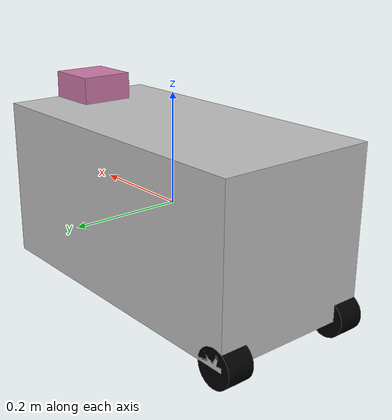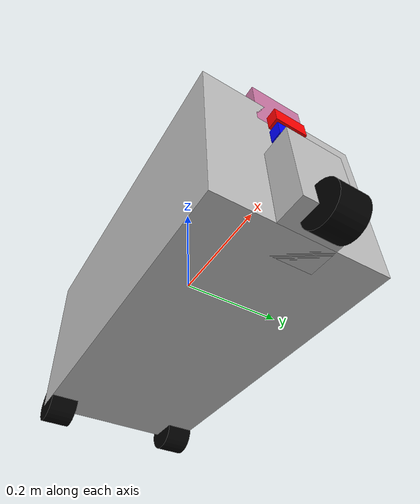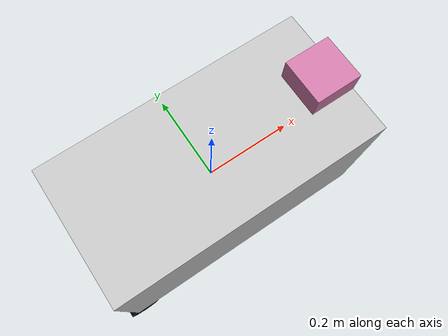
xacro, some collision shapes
<?xml version="1.0"?>
<robot xmlns:xacro="http://ros.org/wiki/xacro" name="tortoisebot">

   <link name="base_link">
   <visual>
      <geometry>
         <box size="0.6 0.3 0.3"/>
      </geometry>
      <material name="silver">
         <color rgba="0.75 0.75 0.75 1"/>
      </material>
   </visual>
   <collision>
      <geometry>
         <box size="0.6 0.3 0.3"/>
      </geometry>
   </collision>
   <inertial>
      <mass value="1.0"/>
      <inertia ixx="0.015" iyy="0.0375" izz="0.0375" ixy="0" ixz="0" iyz="0"/>
   </inertial>
   </link>

   <joint name="base_footprint_joint" type="fixed">
      <parent link="base_link"/>
      <child link="base_footprint"/>
      <origin xyz="0 0 -0.185" rpy="0 0 0"/>
   </joint>

   <link name = "base_footprint"/>

   <link name="front_caster">
   <visual>
      <geometry>
         <box size="0.1 0.1 0.15"/>
      </geometry>
      <material name="silver">
         <color rgba="0.75 0.75 0.75 1"/>
      </material>
   </visual>
   <collision>
      <geometry>
         <box size="0.1 0.1 0.15"/>
      </geometry>
   </collision>
   <inertial>
      <mass value="0.05"/>
      <inertia ixx="0.00013542" iyy="0.00013542" izz="0.00008333" ixy="0" ixz="0" iyz="0"/>
   </inertial>
   </link>

   <joint name="front_caster_joint" type="continuous">
      <axis xyz="0 0 1"/>
      <parent link="base_link"/>
      <child link="front_caster"/>
      <origin rpy="0 0 0" xyz="0.3 0 -0.075"/>
   </joint>

   <link name="front_wheel">
   <visual>
      <geometry>
         <cylinder length="0.05" radius="0.035"/>
      </geometry>
      <material name="black">
         <color rgba="0 0 0 1"/>
      </material>
   </visual>
   <collision>
      <geometry>
         <cylinder length="0.05" radius="0.035"/>
      </geometry>
   </collision>
   <inertial>
      <mass value="0.1"/>
      <inertia ixx="5.1458e-5" iyy="5.1458e-5" izz="6.125e-5" ixy="0" ixz="0" iyz="0"/>
   </inertial>
   </link>

   <joint name="front_wheel_joint" type="continuous">
      <axis xyz="0 0 1"/>
      <parent link="front_caster"/>
      <child link="front_wheel"/>
      <origin rpy="-1.5708 0 0" xyz="0.05 0 -.075"/>
   </joint>

   <link name="right_wheel">
   <visual>
      <geometry>
         <cylinder length="0.05" radius="0.035"/>
      </geometry>
      <material name="black">
         <color rgba="0 0 0 1"/>
      </material>
   </visual>
   <collision>
      <geometry>
         <cylinder length="0.05" radius="0.035"/>
      </geometry>
   </collision>
   <inertial>
      <mass value="0.1"/>
      <inertia ixx="5.1458e-5" iyy="5.1458e-5" izz="6.125e-5" ixy="0" ixz="0" iyz="0"/>
   </inertial>
   </link>

   <joint name="right_wheel_joint" type="continuous">
      <axis xyz="0 0 1">
         <limit>
            <effort>20</effort>
         </limit>
      </axis>
      <max_linear_acceleration>0.033</max_linear_acceleration>
      <parent link="base_link"/>
      <child link="right_wheel"/>
      <origin rpy="-1.5708 0 0" xyz="-0.2825 -0.125 -.15"/>
   </joint>

   <link name="left_wheel">
   <visual>
      <geometry>
         <cylinder length="0.05" radius="0.035"/>
      </geometry>
      <material name="black">
         <color rgba="0 0 0 1"/>
      </material>
   </visual>
   <collision>
      <geometry>
         <cylinder length="0.05" radius="0.035"/>
      </geometry>
   </collision>
   <inertial>
      <mass value="0.1"/>
      <inertia ixx="5.1458e-5" iyy="5.1458e-5" izz="6.125e-5" ixy="0" ixz="0" iyz="0"/>
   </inertial>
   </link>

   <joint name="left_wheel_joint" type="continuous">
      <axis xyz="0 0 1">
         <limit>
            <effort>20</effort>
         </limit>
      </axis>
      <max_linear_acceleration>0.033</max_linear_acceleration>
      <parent link="base_link"/>
      <child link="left_wheel"/>
      <origin rpy="-1.5708 0 0" xyz="-0.2825 0.125 -.15"/>
   </joint>

   <joint name="lidar_joint" type="fixed">
      <parent link="base_link"/>
      <child link="base_scan"/>
      <origin xyz="0.25 0 0.15" rpy="0 0 0"/>
   </joint>

   <link name="base_scan">
   <visual>
      <origin xyz="0 0 0" rpy="0 0 0"/>
      <geometry>
         <mesh filename="file://$(find robot_description)/meshes/lidar.dae"/>
      </geometry>
   </visual>
   <collision>
      <origin xyz="0 0 0" rpy="0 0 0"/>
      <geometry>
         <box size="0.1 0.1 0.1"/>
      </geometry>
   </collision>
   <inertial>
      <mass value="1e-5"/>
      <origin xyz="0 0 0" rpy="0 0 0"/>
      <inertia ixx="1e-6" ixy="0" ixz="0" iyy="1e-6" iyz="0" izz="1e-6"/>
   </inertial>

   </link>

   <link name="camera_link">
   <visual>
      <geometry>
         <box size="0.02 0.06 0.03"/>
      </geometry>
      <material name="blue">
         <color rgba="0 0 1 1"/>
      </material>
   </visual>
   <collision>
      <geometry>
         <box size="0.02 0.06 0.03"/>
      </geometry>
   </collision>
   <inertial>
      <mass value="0.05"/>
      <inertia ixx="1e-5" iyy="1e-5" izz="1e-5" ixy="0" ixz="0" iyz="0"/>
   </inertial>

   </link>

   <joint name="camera_joint" type="fixed">
      <parent link="base_link"/>
      <child link="camera_link"/>
      <origin xyz="0.31 0.0 0.06" rpy="0 0 0"/>
   </joint>

   <link name="camera_optical_frame"/>
   <joint name="camera_optical_frame_joint" type="fixed">
      <parent link="camera_link"/>
      <child link="camera_optical_frame"/>
      <origin xyz="0 0 0" rpy="-1.5708 0 -1.5708"/>
   </joint>

   <link name ="imu_link">
   <visual>
      <geometry>
         <box size="0.02 0.06 0.03"/>
      </geometry>
      <material name="red">
         <color rgba="1 0 0 1"/>
      </material>
   </visual>
   <collision>
      <geometry>
         <box size="0.02 0.06 0.03"/>
      </geometry>
   </collision>
   <inertial>
      <mass value="0.05"/>
      <inertia ixx="1e-5" iyy="1e-5" izz="1e-5" ixy="0" ixz="0" iyz="0"/>
   </inertial>

   </link>

    <joint name="imu_joint" type="fixed">
      <parent link="base_link"/>
      <child link="imu_link"/>
      <origin xyz="0.31 0.0 0.1" rpy="0 0 0"/>
   </joint>

  <gazebo>
      <plugin
         filename="gz-sim-diff-drive-system"
         name="gz::sim::systems::DiffDrive">
         <left_joint>left_wheel_joint</left_joint>
         <right_joint>right_wheel_joint</right_joint>
         <wheel_separation>0.25</wheel_separation>
         <wheel_radius>0.035</wheel_radius>
         <topic>cmd_vel</topic>
         <max_linear_acceleration>0.1</max_linear_acceleration>
         <odom_topic>odom</odom_topic>
         <frame_id>odom</frame_id>
         <child_frame_id>base_link</child_frame_id>
         <odom_publisher_frequency>30</odom_publisher_frequency>
         <tf_topic>/tf</tf_topic>
      </plugin>

      <plugin filename="gz-sim-joint-state-publisher-system"
         name="gz::sim::systems::JointStatePublisher">
         <topic>joint_states</topic>
         <joint_name>left_wheel_joint</joint_name>
         <joint_name>right_wheel_joint</joint_name>
      </plugin>
    </gazebo>

    <gazebo reference = "imu_link">
    <sensor name="tb3_imu" type="imu">
    <always_on>true</always_on>
    <update_rate>200</update_rate>
    <gz_frame_id>imu_link</gz_frame_id>
    <topic>imu</topic>
    <imu>
     <angular_velocity>
            <x>
              <noise type="gaussian">
                <mean>0.0</mean>
                <stddev>2e-4</stddev>
              </noise>
            </x>
            <y>
              <noise type="gaussian">
                <mean>0.0</mean>
                <stddev>2e-4</stddev>
              </noise>
            </y>
            <z>
              <noise type="gaussian">
                <mean>0.0</mean>
                <stddev>2e-4</stddev>
              </noise>
            </z>
          </angular_velocity>
          <linear_acceleration>
            <x>
              <noise type="gaussian">
                <mean>0.0</mean>
                <stddev>1.7e-2</stddev>
              </noise>
            </x>
            <y>
              <noise type="gaussian">
                <mean>0.0</mean>
                <stddev>1.7e-2</stddev>
              </noise>
            </y>
            <z>
              <noise type="gaussian">
                <mean>0.0</mean>
                <stddev>1.7e-2</stddev>
              </noise>
            </z>
          </linear_acceleration>
    </imu>
  </sensor>
  </gazebo>

  <gazebo reference="camera_link">
  <sensor name="mycamera" type="rgbd_camera">
         <always_on>1</always_on>
         <update_rate>10</update_rate>
         <visualize>true</visualize>
         <topic>depth_camera</topic>
         <gz_frame_id>camera_optical_frame</gz_frame_id>
         <camera name="mycamera1">
          <camera_info_topic>depth_camera/camera_info</camera_info_topic>
            <horizontal_fov>1.02974</horizontal_fov>
            <image>
               <width>640</width>
               <height>480</height>
            </image>
            <clip>
               <near>0.1</near>
               <far>4</far>
            </clip>
            <optical_frame_id>camera_optical_frame</optical_frame_id>
         </camera>
      </sensor>
      </gazebo>

  <gazebo reference="base_scan">
    <sensor name="hls_lfcd_lds" type="gpu_lidar">
         <always_on>true</always_on>
         <visualize>true</visualize>
         <pose>0 0 0 0 0 0</pose>
         <update_rate>10</update_rate>
         <topic>scan</topic>
         <gz_frame_id>base_scan</gz_frame_id>
         <lidar>
            <scan>
               <horizontal>
                  <samples>180</samples>
                  <update_rate>10</update_rate>
                  <min_angle>-3.14159</min_angle>
                  <max_angle>3.14159</max_angle>
               </horizontal>
            </scan>
            <range>
               <min>0.1</min>
               <max>20</max>
               <resolution>0.015</resolution>
            </range>
            <noise>
               <type>gaussian</type>
               <mean>0.0</mean>
               <stddev>0.01</stddev>
            </noise>
         </lidar>
      </sensor>
      </gazebo>

</robot>
